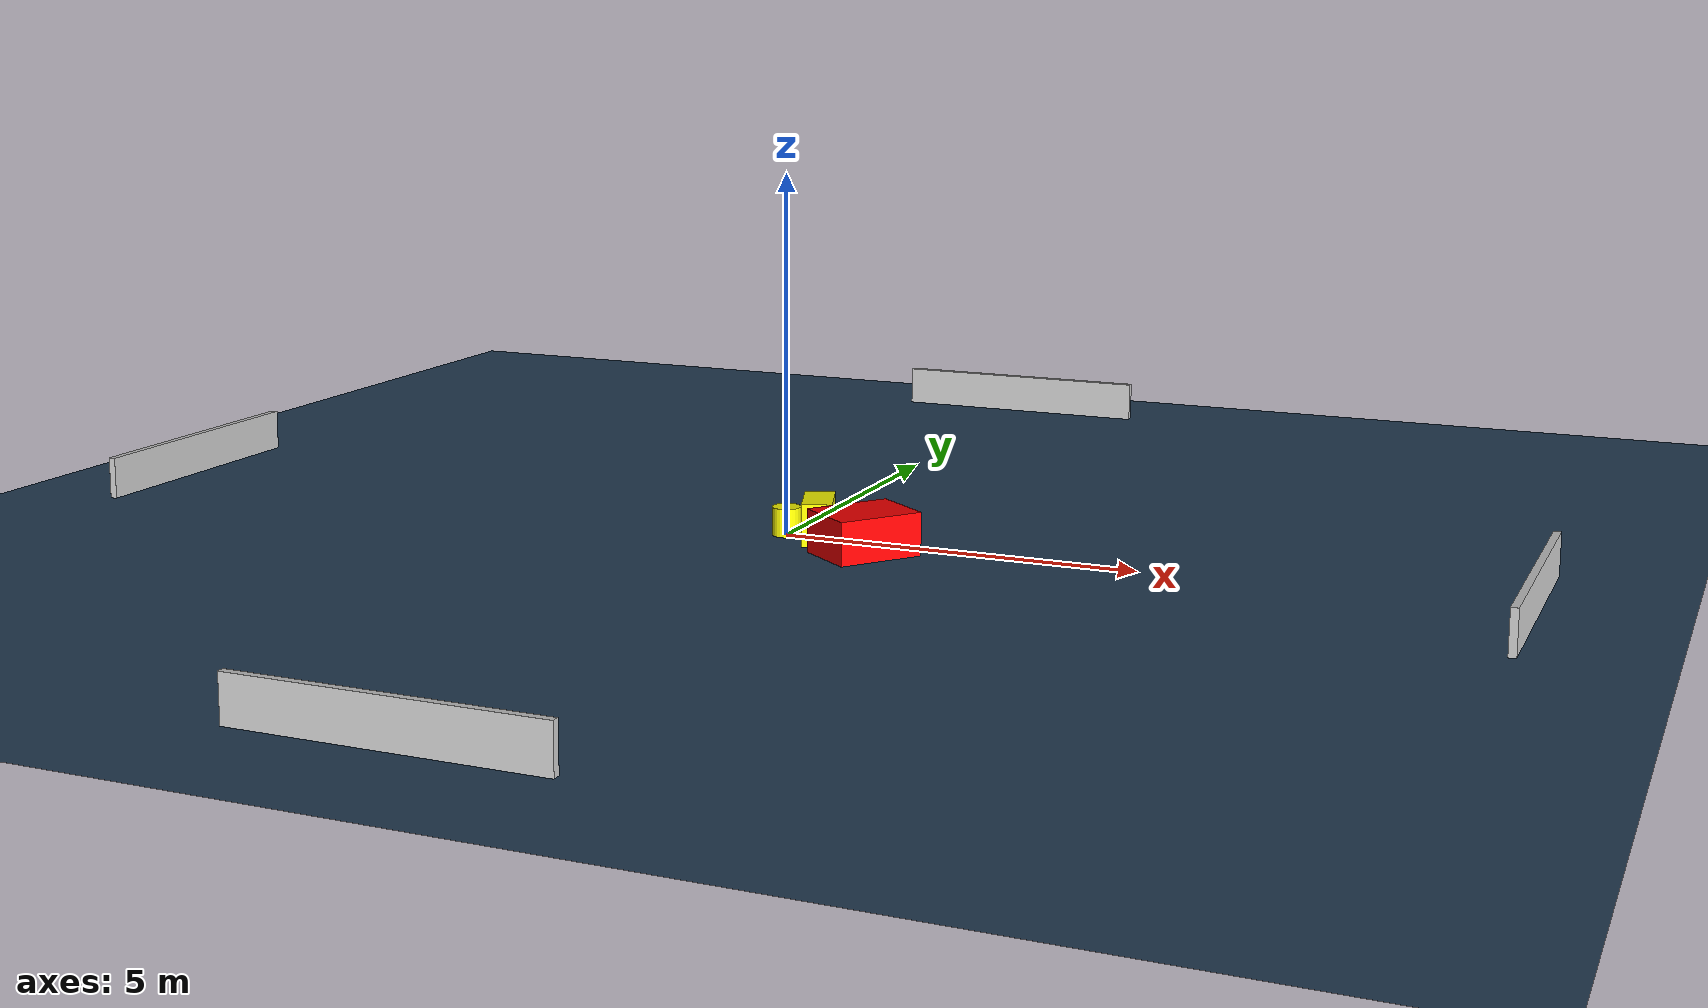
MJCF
<?xml version="1.0" ?>
<mujoco model="generated_environment">
  <option timestep="0.01" integrator="RK4" cone="elliptic"/>
  <default>
    <geom density="1"/>
  </default>
  <asset>
    <texture builtin="gradient" height="3072" name="skybox" rgb1="0.3 0.5 0.7" rgb2="0 0 0" type="skybox" width="512"/>
    <texture builtin="checker" height="300" name="groundplane" rgb1="0.2 0.3 0.4" rgb2="0.1 0.2 0.3" type="2d" width="300"/>
    <material name="groundplane" reflectance="0.2" texrepeat="5 5" texture="groundplane"/>
  </asset>
  <worldbody>
    <light dir="0 0 -1" directional="true" pos="0 0 1.5"/>
    <geom condim="3" friction="0.5 0.005 0.001" material="groundplane" name="floor" pos="0 0 0" size="0 0 0.05" type="plane"/>
    <body name="walls">
      <geom name="wall_1" condim="4" pos="-10.0 0.0 0.3" rgba="0.800000011920929 0.800000011920929 0.800000011920929 1.0" size="0.05 2.0 0.3" type="box"/>
      <geom name="wall_2" condim="4" pos="10.0 0.0 0.3" rgba="0.800000011920929 0.800000011920929 0.800000011920929 1.0" size="0.05 2.0 0.3" type="box"/>
      <geom name="wall_3" condim="4" pos="0.0 -10.0 0.3" rgba="0.800000011920929 0.800000011920929 0.800000011920929 1.0" size="2.0 0.05 0.3" type="box"/>
      <geom name="wall_4" condim="4" pos="0.0 10.0 0.3" rgba="0.800000011920929 0.800000011920929 0.800000011920929 1.0" size="2.0 0.05 0.3" type="box"/>
    </body>
    <body name="robot">
      <joint name="joint_x" type="slide" pos="0 0 0" axis="1 0 0"/>
      <joint name="joint_y" type="slide" pos="0 0 0" axis="0 1 0"/>
      <geom name="robot" type="cylinder" pos="0.0 0.0 0.2" size="0.2 0.2 0.0" mass="5.0" friction="1.0 0.005 0.0001" condim="4" rgba="1.0 1.0 0.0 1.0"/>
    </body>
    <body name="obstacle_1_movable">
      <geom name="obstacle_1_movable" condim="4" pos="0.5373593500353847 -0.1328750845631673 0.3" euler="0 0 289.7082757519306" friction="0.0 0.005 0.001" rgba="1.0 1.0 0.0 1.0" size="0.4133315051285511 0.20953566482421787 0.3" type="box" mass="0.1"/>
      <joint type="free"/>
    </body>
    <body name="obstacle_2_static">
      <geom name="obstacle_2_static" condim="4" pos="1.3883402152939504 -0.5719075667507827 0.3" euler="0 0 52.965329619278734" friction="0.0 0.005 0.001" rgba="1.0 0.0 0.0 1.0" size="0.6148821018473697 0.4571512683736279 0.3" type="box"/>
    </body>
  </worldbody>
  <actuator>
    <motor name="actuator_x" joint="joint_x" gear="1" ctrlrange="-1 1"/>
    <motor name="actuator_y" joint="joint_y" gear="1" ctrlrange="-1 1"/>
  </actuator>
</mujoco>
